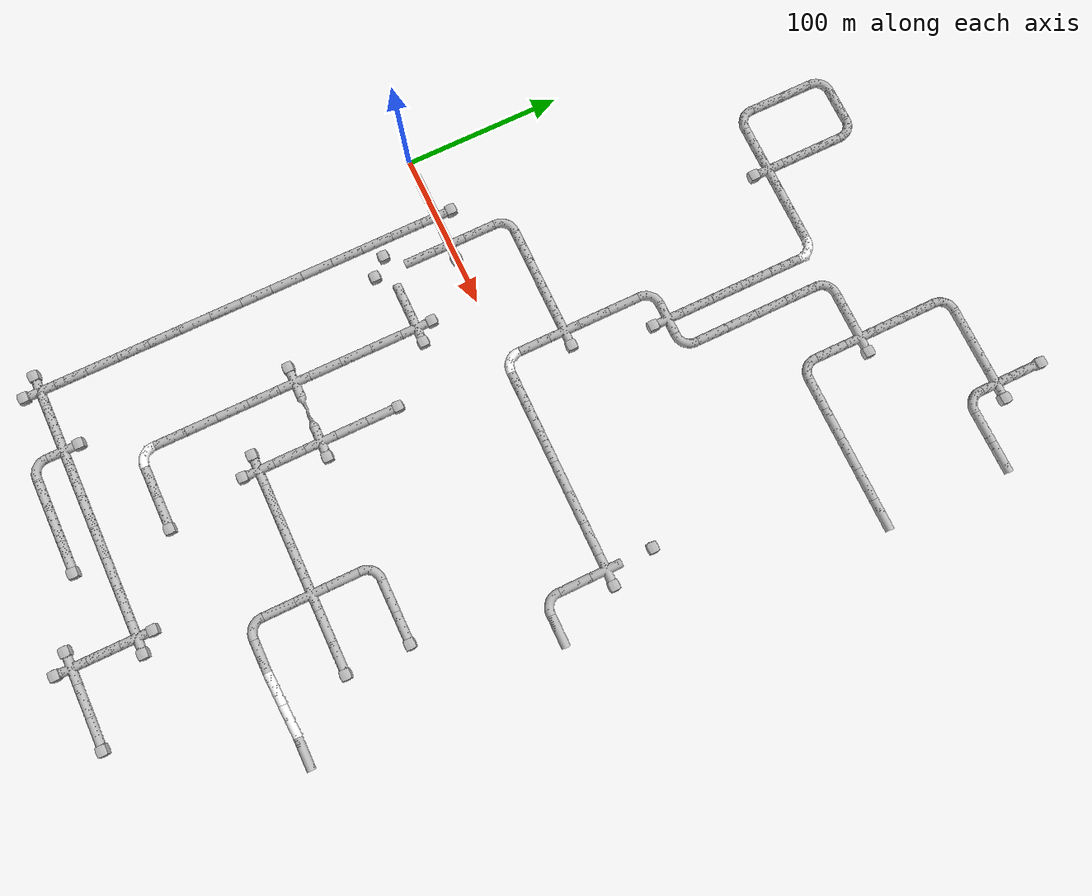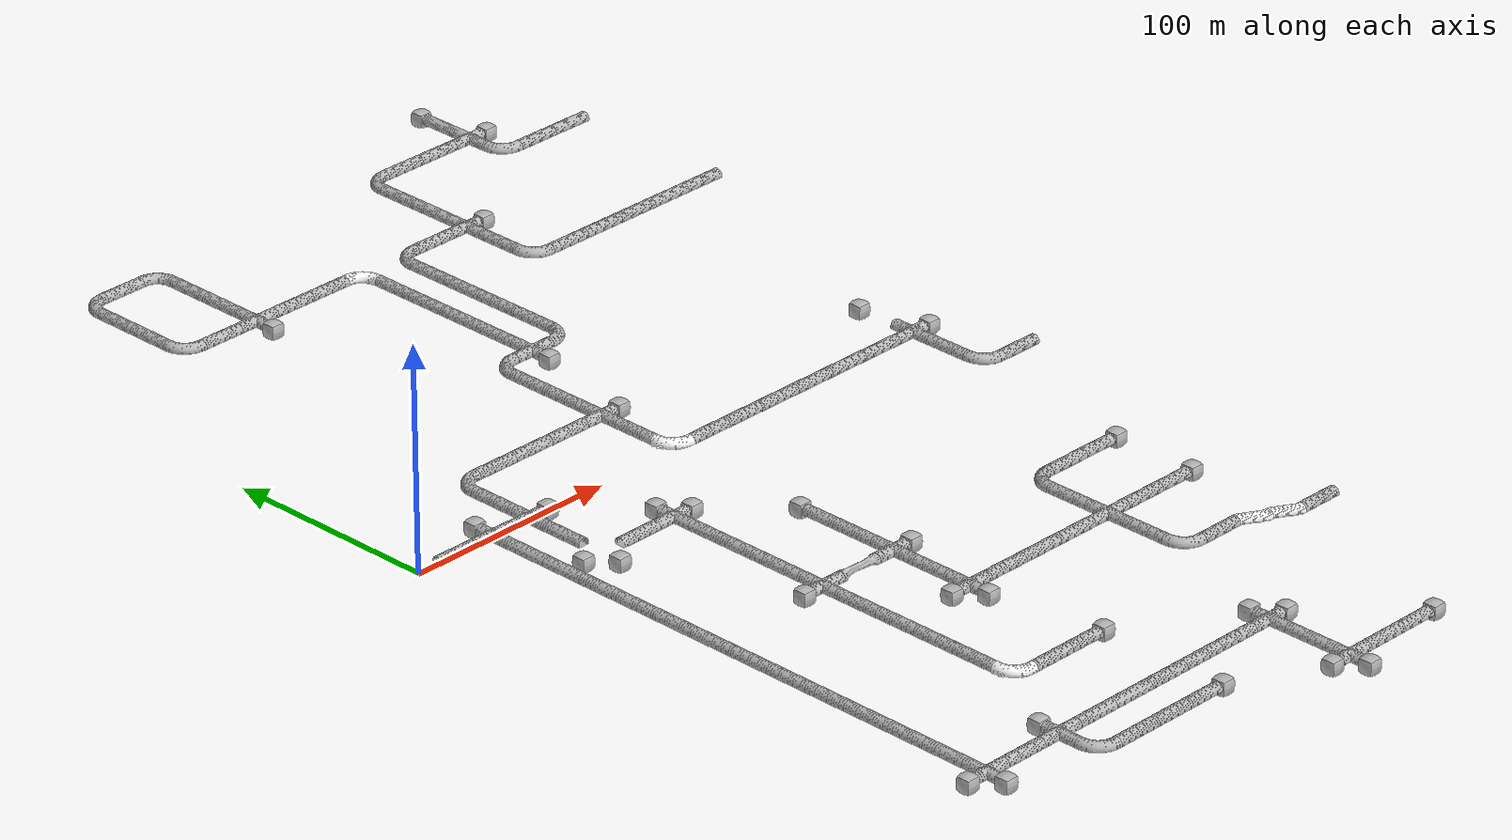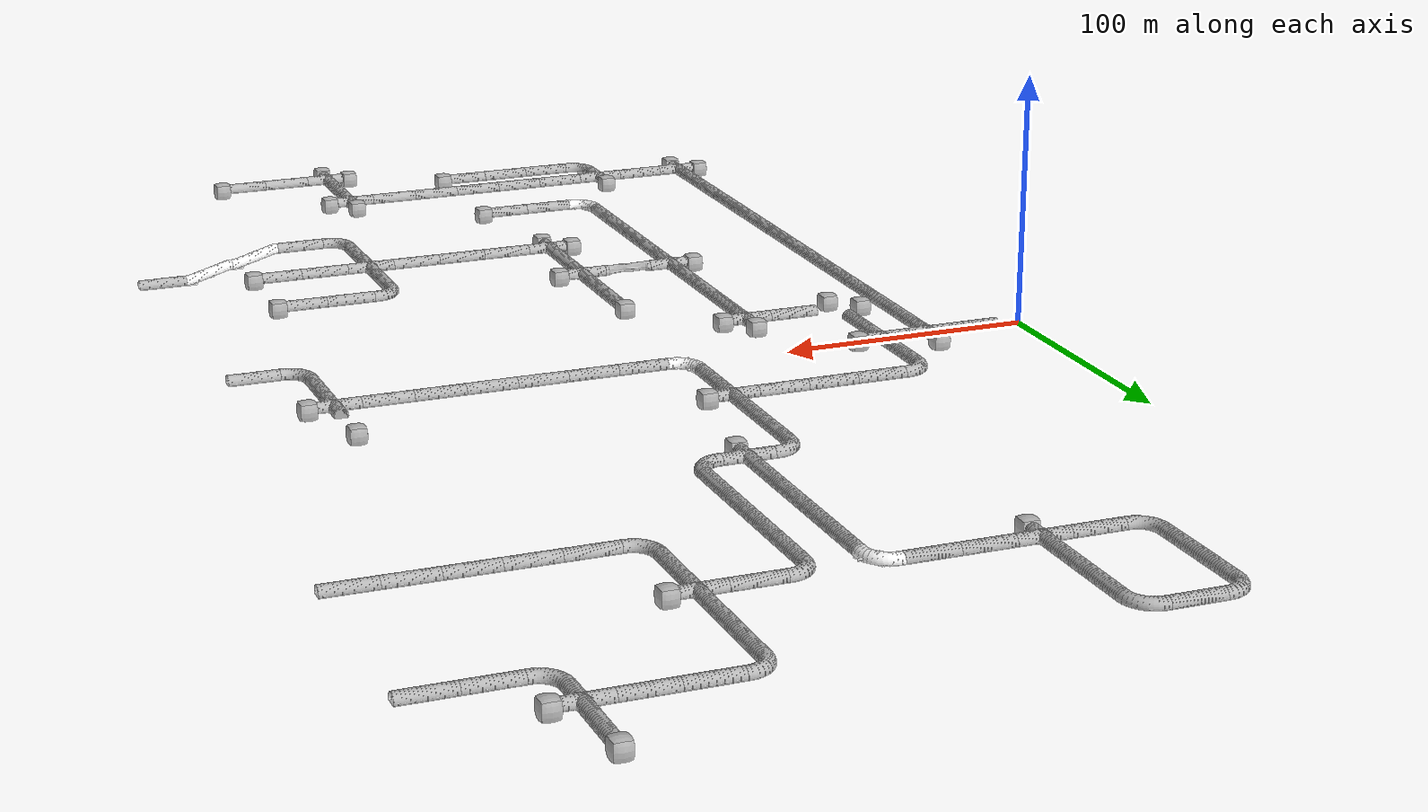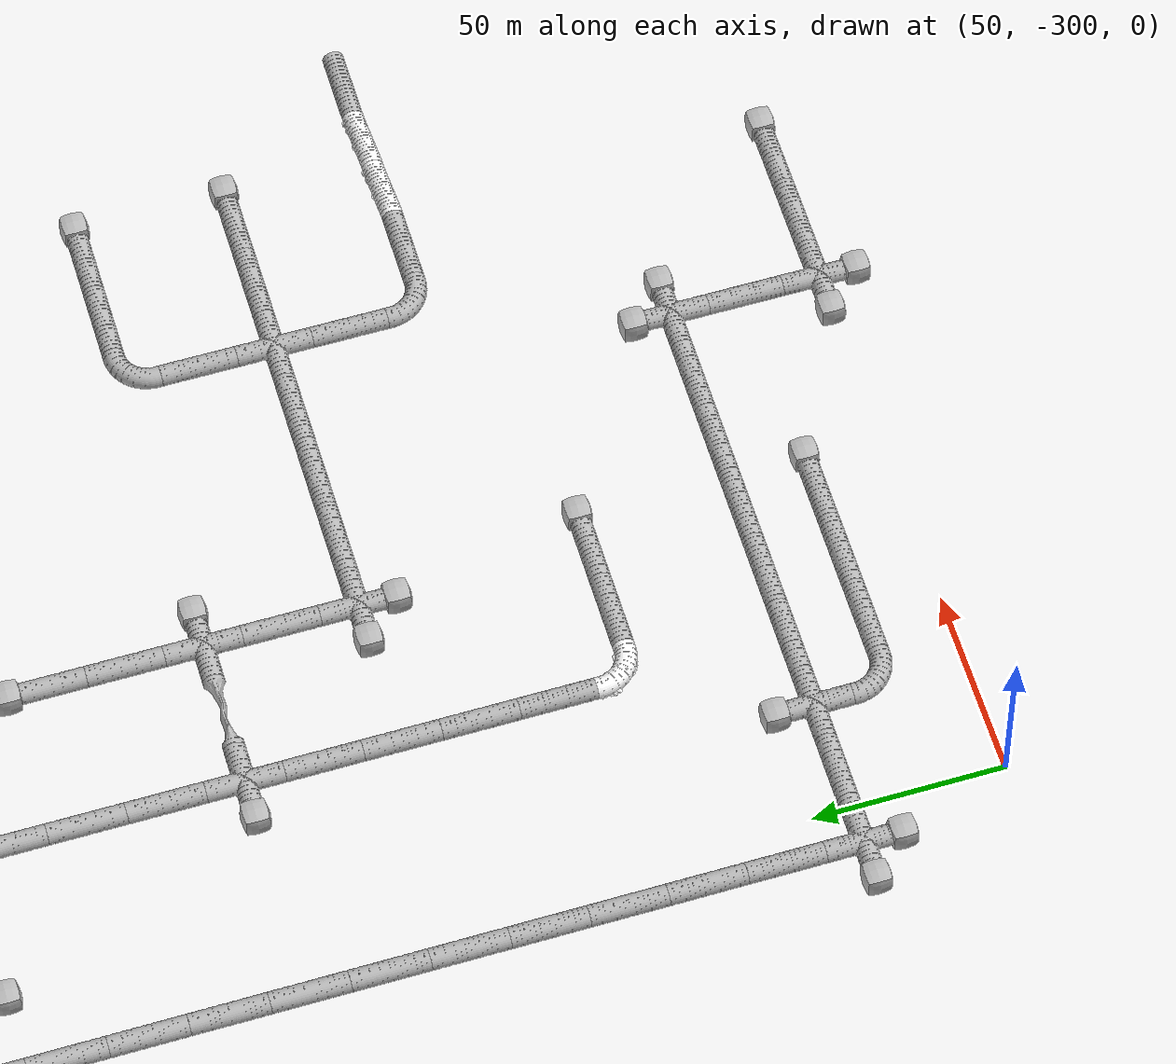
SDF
<sdf version="1.6">
 <world name="tunnel_circuit_02">
  <include><name>artifact_origin</name><pose>2 4 0.5 0 0 0</pose><uri>model://fiducial</uri></include>
  <include>
   <name>tile_3</name>
   <uri>model://tunnel_tile_5</uri>
   <pose>280.000000 280.000000 0.000000 0 0 0.000000</pose>
  </include>
  <include>
   <name>tile_4</name>
   <uri>model://tunnel_tile_blocker</uri>
   <pose>280.000000 290.000000 0.000000 0 0 0.000000</pose>
  </include>
  <include>
   <name>tile_6</name>
   <uri>model://tunnel_tile_2</uri>
   <pose>60.000000 260.000000 0.000000 0 0 0.000000</pose>
  </include>
  <include>
   <name>tile_7</name>
   <uri>model://tunnel_tile_5</uri>
   <pose>80.000000 260.000000 0.000000 0 0 1.570796</pose>
  </include>
  <include>
   <name>tile_8</name>
   <uri>model://tunnel_tile_2</uri>
   <pose>100.000000 260.000000 0.000000 0 0 -1.570796</pose>
  </include>
  <include>
   <name>tile_9</name>
   <uri>model://tunnel_tile_2</uri>
   <pose>220.000000 260.000000 0.000000 0 0 0.000000</pose>
  </include>
  <include>
   <name>tile_10</name>
   <uri>model://tunnel_tile_5</uri>
   <pose>240.000000 260.000000 0.000000 0 0 1.570796</pose>
  </include>
  <include>
   <name>tile_11</name>
   <uri>model://tunnel_tile_5</uri>
   <pose>260.000000 260.000000 0.000000 0 0 1.570796</pose>
  </include>
  <include>
   <name>tile_12</name>
   <uri>model://tunnel_tile_1</uri>
   <pose>280.000000 260.000000 0.000000 0 0 1.570796</pose>
  </include>
  <include>
   <name>tile_13</name>
   <uri>model://tunnel_tile_blocker</uri>
   <pose>290.000000 260.000000 0.000000 0 0 0.000000</pose>
  </include>
  <include>
   <name>tile_21</name>
   <uri>model://tunnel_tile_5</uri>
   <pose>60.000000 240.000000 0.000000 0 0 0.000000</pose>
  </include>
  <include>
   <name>tile_22</name>
   <uri>model://tunnel_tile_5</uri>
   <pose>100.000000 240.000000 0.000000 0 0 -3.141593</pose>
  </include>
  <include>
   <name>tile_23</name>
   <uri>model://tunnel_tile_5</uri>
   <pose>220.000000 240.000000 0.000000 0 0 0.000000</pose>
  </include>
  <include>
   <name>tile_24</name>
   <uri>model://tunnel_tile_2</uri>
   <pose>280.000000 240.000000 0.000000 0 0 1.570796</pose>
  </include>
  <include>
   <name>tile_25</name>
   <uri>model://tunnel_tile_5</uri>
   <pose>300.000000 240.000000 0.000000 0 0 1.570796</pose>
  </include>
  <include>
   <name>tile_26</name>
   <uri>model://tunnel_tile_5</uri>
   <pose>320.000000 240.000000 0.000000 0 0 1.570796</pose>
  </include>
  <include>
   <name>tile_38</name>
   <uri>model://tunnel_tile_5</uri>
   <pose>60.000000 220.000000 0.000000 0 0 0.000000</pose>
  </include>
  <include>
   <name>tile_39</name>
   <uri>model://tunnel_tile_5</uri>
   <pose>100.000000 220.000000 0.000000 0 0 -3.141593</pose>
  </include>
  <include>
   <name>tile_40</name>
   <uri>model://tunnel_tile_5</uri>
   <pose>220.000000 220.000000 0.000000 0 0 0.000000</pose>
  </include>
  <include>
   <name>tile_44</name>
   <uri>model://tunnel_tile_2</uri>
   <pose>60.000000 200.000000 0.000000 0 0 1.570796</pose>
  </include>
  <include>
   <name>extinguisher_1</name>
   <uri>model://Extinguisher</uri>
   <pose>58.500000 212.848007 0.050000 -1.570796 0 1.570796</pose>
  </include>
  <include>
   <name>tile_45</name>
   <uri>model://tunnel_tile_5</uri>
   <pose>80.000000 200.000000 0.000000 0 0 -1.570796</pose>
  </include>
  <include>
   <name>tile_46</name>
   <uri>model://tunnel_tile_1</uri>
   <pose>100.000000 200.000000 0.000000 0 0 1.570796</pose>
  </include>
  <include>
   <name>tile_47</name>
   <uri>model://tunnel_tile_blocker</uri>
   <pose>100.000000 190.000000 0.000000 0 0 0.000000</pose>
  </include>
  <include>
   <name>tile_48</name>
   <uri>model://tunnel_tile_5</uri>
   <pose>120.000000 200.000000 0.000000 0 0 -1.570796</pose>
  </include>
  <include>
   <name>tile_49</name>
   <uri>model://tunnel_tile_5</uri>
   <pose>140.000000 200.000000 0.000000 0 0 -1.570796</pose>
  </include>
  <include>
   <name>tile_50</name>
   <uri>model://Rough Tunnel Tile 90-degree Turn</uri>
   <pose>160.000000 200.000000 0.000000 0 0 -1.570796</pose>
  </include>
  <include>
   <name>tile_51</name>
   <uri>model://tunnel_tile_2</uri>
   <pose>180.000000 200.000000 0.000000 0 0 0.000000</pose>
  </include>
  <include>
   <name>tile_52</name>
   <uri>model://tunnel_tile_5</uri>
   <pose>200.000000 200.000000 0.000000 0 0 -1.570796</pose>
  </include>
  <include>
   <name>tile_53</name>
   <uri>model://tunnel_tile_1</uri>
   <pose>220.000000 200.000000 0.000000 0 0 0.000000</pose>
  </include>
  <include>
   <name>tile_54</name>
   <uri>model://tunnel_tile_blocker</uri>
   <pose>230.000000 200.000000 0.000000 0 0 0.000000</pose>
  </include>
  <include>
   <name>tile_62</name>
   <uri>model://tunnel_tile_5</uri>
   <pose>160.000000 180.000000 0.000000 0 0 0.000000</pose>
  </include>
  <include>
   <name>tile_63</name>
   <uri>model://tunnel_tile_5</uri>
   <pose>180.000000 180.000000 0.000000 0 0 0.000000</pose>
  </include>
  <include>
   <name>tile_64</name>
   <uri>model://tunnel_tile_5</uri>
   <pose>220.000000 180.000000 0.000000 0 0 0.000000</pose>
  </include>
  <include>
   <name>tile_68</name>
   <uri>model://tunnel_tile_5</uri>
   <pose>160.000000 160.000000 0.000000 0 0 0.000000</pose>
  </include>
  <include>
   <name>tile_69</name>
   <uri>model://tunnel_tile_5</uri>
   <pose>180.000000 160.000000 0.000000 0 0 0.000000</pose>
  </include>
  <include>
   <name>tile_70</name>
   <uri>model://tunnel_tile_2</uri>
   <pose>220.000000 160.000000 0.000000 0 0 1.570796</pose>
  </include>
  <include>
   <name>tile_71</name>
   <uri>model://tunnel_tile_5</uri>
   <pose>240.000000 160.000000 0.000000 0 0 1.570796</pose>
  </include>
  <include>
   <name>backpack_1</name>
   <uri>model://Backpack</uri>
   <pose>254.593994 157.921005 0.000000 0 0 1.570796</pose>
  </include>
  <include>
   <name>tile_72</name>
   <uri>model://tunnel_tile_5</uri>
   <pose>260.000000 160.000000 0.000000 0 0 1.570796</pose>
  </include>
  <include>
   <name>tile_73</name>
   <uri>model://tunnel_tile_5</uri>
   <pose>280.000000 160.000000 0.000000 0 0 1.570796</pose>
  </include>
  <include>
   <name>tile_74</name>
   <uri>model://tunnel_tile_5</uri>
   <pose>300.000000 160.000000 0.000000 0 0 1.570796</pose>
  </include>
  <include>
   <name>tile_75</name>
   <uri>model://tunnel_tile_5</uri>
   <pose>320.000000 160.000000 0.000000 0 0 1.570796</pose>
  </include>
  <include>
   <name>tile_87</name>
   <uri>model://tunnel_tile_5</uri>
   <pose>160.000000 140.000000 0.000000 0 0 0.000000</pose>
  </include>
  <include>
   <name>tile_88</name>
   <uri>model://tunnel_tile_5</uri>
   <pose>180.000000 140.000000 0.000000 0 0 0.000000</pose>
  </include>
  <include>
   <name>tile_90</name>
   <uri>model://tunnel_tile_5</uri>
   <pose>160.000000 120.000000 0.000000 0 0 0.000000</pose>
  </include>
  <include>
   <name>tile_91</name>
   <uri>model://tunnel_tile_5</uri>
   <pose>180.000000 120.000000 0.000000 0 0 0.000000</pose>
  </include>
  <include>
   <name>tile_93</name>
   <uri>model://tunnel_tile_2</uri>
   <pose>140.000000 100.000000 0.000000 0 0 0.000000</pose>
  </include>
  <include>
   <name>tile_94</name>
   <uri>model://tunnel_tile_1</uri>
   <pose>160.000000 100.000000 0.000000 0 0 0.000000</pose>
  </include>
  <include>
   <name>tile_95</name>
   <uri>model://tunnel_tile_2</uri>
   <pose>180.000000 100.000000 0.000000 0 0 -3.141593</pose>
  </include>
  <include>
   <name>tile_97</name>
   <uri>model://tunnel_tile_5</uri>
   <pose>140.000000 80.000000 0.000000 0 0 -3.141593</pose>
  </include>
  <include>
   <name>tile_98</name>
   <uri>model://tunnel_tile_blocker</uri>
   <pose>160.000000 90.000000 0.000000 0 0 0.000000</pose>
  </include>
  <include>
   <name>tile_100</name>
   <uri>model://tunnel_tile_5</uri>
   <pose>140.000000 60.000000 0.000000 0 0 -3.141593</pose>
  </include>
  <include>
   <name>tile_102</name>
   <uri>model://tunnel_tile_2</uri>
   <pose>60.000000 40.000000 0.000000 0 0 0.000000</pose>
  </include>
  <include>
   <name>tile_103</name>
   <uri>model://tunnel_tile_5</uri>
   <pose>80.000000 40.000000 0.000000 0 0 -1.570796</pose>
  </include>
  <include>
   <name>tile_104</name>
   <uri>model://tunnel_tile_5</uri>
   <pose>100.000000 40.000000 0.000000 0 0 1.570796</pose>
  </include>
  <include>
   <name>backpack_2</name>
   <uri>model://Backpack</uri>
   <pose>114.403297 41.899601 0.000000 0 0 -0.000000</pose>
  </include>
  <include>
   <name>tile_105</name>
   <uri>model://tunnel_tile_5</uri>
   <pose>120.000000 40.000000 0.000000 0 0 -1.570796</pose>
  </include>
  <include>
   <name>tile_106</name>
   <uri>model://tunnel_tile_1</uri>
   <pose>140.000000 40.000000 0.000000 0 0 -1.570796</pose>
  </include>
  <include>
   <name>tile_107</name>
   <uri>model://tunnel_tile_blocker</uri>
   <pose>150.000000 40.000000 0.000000 0 0 0.000000</pose>
  </include>
  <include>
   <name>tile_119</name>
   <uri>model://tunnel_tile_5</uri>
   <pose>60.000000 20.000000 0.000000 0 0 0.000000</pose>
  </include>
  <include>
   <name>tile_120</name>
   <uri>model://tunnel_tile_5</uri>
   <pose>140.000000 20.000000 0.000000 0 0 -3.141593</pose>
  </include>
  <include>
   <name>tile_122</name>
   <uri>model://tunnel_tile_blocker</uri>
   <pose>280.000000 30.000000 0.000000 0 0 0.000000</pose>
  </include>
  <include>
   <name>tile_125</name>
   <uri>model://tunnel_tile_5</uri>
   <pose>20.000000 0.000000 0.000000 0 0 1.570796</pose>
  </include>
  <include>
   <name>tile_126</name>
   <uri>model://tunnel_tile_1</uri>
   <pose>40.000000 0.000000 0.000000 0 0 1.570796</pose>
  </include>
  <include>
   <name>tile_127</name>
   <uri>model://tunnel_tile_blocker</uri>
   <pose>40.000000 10.000000 0.000000 0 0 0.000000</pose>
  </include>
  <include>
   <name>tile_128</name>
   <uri>model://tunnel_tile_1</uri>
   <pose>60.000000 0.000000 0.000000 0 0 1.570796</pose>
  </include>
  <include>
   <name>tile_129</name>
   <uri>model://tunnel_tile_blocker</uri>
   <pose>70.000000 0.000000 0.000000 0 0 0.000000</pose>
  </include>
  <include>
   <name>phone_2</name>
   <uri>model://Phone</uri>
   <pose>65.633999 0.142002 0.006000 -1.570796 0 2.356194</pose>
  </include>
  <include>
   <name>tile_130</name>
   <uri>model://Rough Tunnel Tile 90-degree Turn</uri>
   <pose>140.000000 0.000000 0.000000 0 0 1.570796</pose>
  </include>
  <include>
   <name>tile_131</name>
   <uri>model://tunnel_tile_5</uri>
   <pose>160.000000 0.000000 0.000000 0 0 1.570796</pose>
  </include>
  <include>
   <name>tile_132</name>
   <uri>model://tunnel_tile_5</uri>
   <pose>180.000000 0.000000 0.000000 0 0 1.570796</pose>
  </include>
  <include>
   <name>tile_133</name>
   <uri>model://tunnel_tile_5</uri>
   <pose>200.000000 0.000000 0.000000 0 0 1.570796</pose>
  </include>
  <include>
   <name>tile_134</name>
   <uri>model://tunnel_tile_5</uri>
   <pose>220.000000 0.000000 0.000000 0 0 1.570796</pose>
  </include>
  <include>
   <name>tile_135</name>
   <uri>model://tunnel_tile_5</uri>
   <pose>240.000000 0.000000 0.000000 0 0 1.570796</pose>
  </include>
  <include>
   <name>extinguisher_2</name>
   <uri>model://Extinguisher</uri>
   <pose>248.699997 0.848270 0.050000 -1.570796 0 -3.141593</pose>
  </include>
  <include>
   <name>tile_136</name>
   <uri>model://tunnel_tile_5</uri>
   <pose>260.000000 0.000000 0.000000 0 0 1.570796</pose>
  </include>
  <include>
   <name>tile_137</name>
   <uri>model://tunnel_tile_1</uri>
   <pose>280.000000 0.000000 0.000000 0 0 1.570796</pose>
  </include>
  <include>
   <name>tile_138</name>
   <uri>model://tunnel_tile_blocker</uri>
   <pose>290.000000 0.000000 0.000000 0 0 0.000000</pose>
  </include>
  <include>
   <name>tile_159</name>
   <uri>model://tunnel_tile_5</uri>
   <pose>40.000000 -20.000000 0.000000 0 0 -3.141593</pose>
  </include>
  <include>
   <name>tile_160</name>
   <uri>model://tunnel_tile_5</uri>
   <pose>60.000000 -20.000000 0.000000 0 0 -3.141593</pose>
  </include>
  <include>
   <name>tile_161</name>
   <uri>model://tunnel_tile_5</uri>
   <pose>280.000000 -20.000000 0.000000 0 0 0.000000</pose>
  </include>
  <include>
   <name>tile_166</name>
   <uri>model://tunnel_tile_5</uri>
   <pose>40.000000 -40.000000 0.000000 0 0 -3.141593</pose>
  </include>
  <include>
   <name>tile_167</name>
   <uri>model://tunnel_tile_blocker</uri>
   <pose>50.000000 -40.000000 0.000000 0 0 0.000000</pose>
  </include>
  <include>
   <name>tile_169</name>
   <uri>model://tunnel_tile_5</uri>
   <pose>80.000000 -40.000000 0.000000 0 0 1.570796</pose>
  </include>
  <include>
   <name>tile_170</name>
   <uri>model://tunnel_tile_1</uri>
   <pose>100.000000 -40.000000 0.000000 0 0 1.570796</pose>
  </include>
  <include>
   <name>tile_171</name>
   <uri>model://tunnel_tile_blocker</uri>
   <pose>100.000000 -30.000000 0.000000 0 0 0.000000</pose>
  </include>
  <include>
   <name>tile_172</name>
   <uri>model://tunnel_tile_blocker</uri>
   <pose>110.000000 -40.000000 0.000000 0 0 0.000000</pose>
  </include>
  <include>
   <name>extinguisher_3</name>
   <uri>model://Extinguisher</uri>
   <pose>105.050003 -39.751999 0.050000 -1.570796 0 1.570796</pose>
  </include>
  <include>
   <name>tile_173</name>
   <uri>model://tunnel_tile_2</uri>
   <pose>280.000000 -40.000000 0.000000 0 0 1.570796</pose>
  </include>
  <include>
   <name>tile_174</name>
   <uri>model://tunnel_tile_5</uri>
   <pose>300.000000 -40.000000 0.000000 0 0 1.570796</pose>
  </include>
  <include>
   <name>tile_181</name>
   <uri>model://tunnel_tile_5</uri>
   <pose>40.000000 -60.000000 0.000000 0 0 -3.141593</pose>
  </include>
  <include>
   <name>tile_182</name>
   <uri>model://tunnel_tile_blocker</uri>
   <pose>60.000000 -50.000000 0.000000 0 0 0.000000</pose>
  </include>
  <include>
   <name>tile_183</name>
   <uri>model://tunnel_tile_5</uri>
   <pose>100.000000 -60.000000 0.000000 0 0 0.000000</pose>
  </include>
  <include>
   <name>tile_189</name>
   <uri>model://tunnel_tile_5</uri>
   <pose>40.000000 -80.000000 0.000000 0 0 -3.141593</pose>
  </include>
  <include>
   <name>tile_190</name>
   <uri>model://tunnel_tile_5</uri>
   <pose>100.000000 -80.000000 0.000000 0 0 0.000000</pose>
  </include>
  <include>
   <name>tile_191</name>
   <uri>model://tunnel_tile_5</uri>
   <pose>140.000000 -80.000000 0.000000 0 0 -3.141593</pose>
  </include>
  <include>
   <name>tile_192</name>
   <uri>model://tunnel_tile_blocker</uri>
   <pose>140.000000 -70.000000 0.000000 0 0 0.000000</pose>
  </include>
  <include>
   <name>tile_194</name>
   <uri>model://tunnel_tile_5</uri>
   <pose>40.000000 -100.000000 0.000000 0 0 -3.141593</pose>
  </include>
  <include>
   <name>tile_195</name>
   <uri>model://tunnel_tile_5</uri>
   <pose>100.000000 -100.000000 0.000000 0 0 0.000000</pose>
  </include>
  <include>
   <name>tile_196</name>
   <uri>model://tunnel_tile_5</uri>
   <pose>140.000000 -100.000000 0.000000 0 0 -3.141593</pose>
  </include>
  <include>
   <name>tile_198</name>
   <uri>model://tunnel_tile_5</uri>
   <pose>40.000000 -120.000000 0.000000 0 0 -3.141593</pose>
  </include>
  <include>
   <name>tile_199</name>
   <uri>model://tunnel_tile_1</uri>
   <pose>100.000000 -120.000000 0.000000 0 0 1.570796</pose>
  </include>
  <include>
   <name>tile_200</name>
   <uri>model://tunnel_tile_blocker</uri>
   <pose>90.000000 -120.000000 0.000000 0 0 0.000000</pose>
  </include>
  <include>
   <name>tile_201</name>
   <uri>model://constrained_tunnel_tile_tall</uri>
   <pose>120.000000 -120.000000 0.000000 0 0 1.570796</pose>
  </include>
  <include>
   <name>tile_202</name>
   <uri>model://tunnel_tile_1</uri>
   <pose>140.000000 -120.000000 0.000000 0 0 1.570796</pose>
  </include>
  <include>
   <name>tile_203</name>
   <uri>model://tunnel_tile_blocker</uri>
   <pose>150.000000 -120.000000 0.000000 0 0 0.000000</pose>
  </include>
  <include>
   <name>tile_204</name>
   <uri>model://tunnel_tile_2</uri>
   <pose>220.000000 -120.000000 0.000000 0 0 0.000000</pose>
  </include>
  <include>
   <name>tile_205</name>
   <uri>model://tunnel_tile_5</uri>
   <pose>240.000000 -120.000000 0.000000 0 0 -1.570796</pose>
  </include>
  <include>
   <name>tile_206</name>
   <uri>model://tunnel_tile_5</uri>
   <pose>260.000000 -120.000000 0.000000 0 0 -1.570796</pose>
  </include>
  <include>
   <name>tile_207</name>
   <uri>model://tunnel_tile_blocker</uri>
   <pose>270.000000 -120.000000 0.000000 0 0 0.000000</pose>
  </include>
  <include>
   <name>tile_209</name>
   <uri>model://tunnel_tile_5</uri>
   <pose>40.000000 -140.000000 0.000000 0 0 -3.141593</pose>
  </include>
  <include>
   <name>tile_210</name>
   <uri>model://tunnel_tile_5</uri>
   <pose>100.000000 -140.000000 0.000000 0 0 0.000000</pose>
  </include>
  <include>
   <name>tile_211</name>
   <uri>model://tunnel_tile_5</uri>
   <pose>140.000000 -140.000000 0.000000 0 0 0.000000</pose>
  </include>
  <include>
   <name>tile_212</name>
   <uri>model://tunnel_tile_5</uri>
   <pose>220.000000 -140.000000 0.000000 0 0 -3.141593</pose>
  </include>
  <include>
   <name>tile_232</name>
   <uri>model://tunnel_tile_5</uri>
   <pose>40.000000 -160.000000 0.000000 0 0 -3.141593</pose>
  </include>
  <include>
   <name>tile_233</name>
   <uri>model://tunnel_tile_5</uri>
   <pose>100.000000 -160.000000 0.000000 0 0 0.000000</pose>
  </include>
  <include>
   <name>tile_234</name>
   <uri>model://tunnel_tile_blocker</uri>
   <pose>130.000000 -160.000000 0.000000 0 0 0.000000</pose>
  </include>
  <include>
   <name>tile_235</name>
   <uri>model://tunnel_tile_1</uri>
   <pose>140.000000 -160.000000 0.000000 0 0 0.000000</pose>
  </include>
  <include>
   <name>tile_236</name>
   <uri>model://tunnel_tile_blocker</uri>
   <pose>140.000000 -170.000000 0.000000 0 0 0.000000</pose>
  </include>
  <include>
   <name>tile_237</name>
   <uri>model://tunnel_tile_5</uri>
   <pose>160.000000 -160.000000 0.000000 0 0 -1.570796</pose>
  </include>
  <include>
   <name>tile_238</name>
   <uri>model://tunnel_tile_5</uri>
   <pose>180.000000 -160.000000 0.000000 0 0 -1.570796</pose>
  </include>
  <include>
   <name>tile_239</name>
   <uri>model://tunnel_tile_5</uri>
   <pose>200.000000 -160.000000 0.000000 0 0 -1.570796</pose>
  </include>
  <include>
   <name>tile_240</name>
   <uri>model://tunnel_tile_1</uri>
   <pose>220.000000 -160.000000 0.000000 0 0 -3.141593</pose>
  </include>
  <include>
   <name>tile_241</name>
   <uri>model://tunnel_tile_5</uri>
   <pose>240.000000 -160.000000 0.000000 0 0 -1.570796</pose>
  </include>
  <include>
   <name>tile_242</name>
   <uri>model://tunnel_tile_5</uri>
   <pose>260.000000 -160.000000 0.000000 0 0 -1.570796</pose>
  </include>
  <include>
   <name>tile_243</name>
   <uri>model://tunnel_tile_blocker</uri>
   <pose>270.000000 -160.000000 0.000000 0 0 0.000000</pose>
  </include>
  <include>
   <name>tile_250</name>
   <uri>model://tunnel_tile_5</uri>
   <pose>40.000000 -180.000000 0.000000 0 0 -3.141593</pose>
  </include>
  <include>
   <name>tile_251</name>
   <uri>model://tunnel_tile_5</uri>
   <pose>100.000000 -180.000000 0.000000 0 0 0.000000</pose>
  </include>
  <include>
   <name>tile_252</name>
   <uri>model://tunnel_tile_5</uri>
   <pose>220.000000 -180.000000 0.000000 0 0 -3.141593</pose>
  </include>
  <include>
   <name>tile_256</name>
   <uri>model://tunnel_tile_5</uri>
   <pose>40.000000 -200.000000 0.000000 0 0 -3.141593</pose>
  </include>
  <include>
   <name>tile_257</name>
   <uri>model://tunnel_tile_5</uri>
   <pose>100.000000 -200.000000 0.000000 0 0 0.000000</pose>
  </include>
  <include>
   <name>tile_258</name>
   <uri>model://tunnel_tile_2</uri>
   <pose>220.000000 -200.000000 0.000000 0 0 1.570796</pose>
  </include>
  <include>
   <name>tile_259</name>
   <uri>model://tunnel_tile_5</uri>
   <pose>240.000000 -200.000000 0.000000 0 0 -1.570796</pose>
  </include>
  <include>
   <name>tile_260</name>
   <uri>model://Rough Tunnel Tile Ramp</uri>
   <pose>260.000000 -200.000000 -5.000000 0 0 1.570796</pose>
  </include>
  <include>
   <name>tile_261</name>
   <uri>model://Rough Tunnel Tile Ramp</uri>
   <pose>280.000000 -200.000000 -10.000000 0 0 1.570796</pose>
  </include>
  <include>
   <name>tile_262</name>
   <uri>model://tunnel_tile_5</uri>
   <pose>300.000000 -200.000000 -10.000000 0 0 1.570796</pose>
  </include>
  <include>
   <name>tile_272</name>
   <uri>model://tunnel_tile_5</uri>
   <pose>40.000000 -220.000000 0.000000 0 0 -3.141593</pose>
  </include>
  <include>
   <name>tile_273</name>
   <uri>model://Rough Tunnel Tile 90-degree Turn</uri>
   <pose>100.000000 -220.000000 0.000000 0 0 1.570796</pose>
  </include>
  <include>
   <name>tile_274</name>
   <uri>model://tunnel_tile_5</uri>
   <pose>120.000000 -220.000000 0.000000 0 0 1.570796</pose>
  </include>
  <include>
   <name>tile_275</name>
   <uri>model://tunnel_tile_5</uri>
   <pose>140.000000 -220.000000 0.000000 0 0 1.570796</pose>
  </include>
  <include>
   <name>tile_276</name>
   <uri>model://tunnel_tile_blocker</uri>
   <pose>150.000000 -220.000000 0.000000 0 0 0.000000</pose>
  </include>
  <include>
   <name>tile_288</name>
   <uri>model://tunnel_tile_5</uri>
   <pose>40.000000 -240.000000 0.000000 0 0 -3.141593</pose>
  </include>
  <include>
   <name>tile_299</name>
   <uri>model://tunnel_tile_1</uri>
   <pose>40.000000 -260.000000 0.000000 0 0 -3.141593</pose>
  </include>
  <include>
   <name>tile_300</name>
   <uri>model://tunnel_tile_blocker</uri>
   <pose>30.000000 -260.000000 0.000000 0 0 0.000000</pose>
  </include>
  <include>
   <name>tile_301</name>
   <uri>model://tunnel_tile_blocker</uri>
   <pose>40.000000 -270.000000 0.000000 0 0 0.000000</pose>
  </include>
  <include>
   <name>tile_302</name>
   <uri>model://tunnel_tile_5</uri>
   <pose>60.000000 -260.000000 0.000000 0 0 1.570796</pose>
  </include>
  <include>
   <name>tile_303</name>
   <uri>model://tunnel_tile_1</uri>
   <pose>80.000000 -260.000000 0.000000 0 0 1.570796</pose>
  </include>
  <include>
   <name>tile_304</name>
   <uri>model://tunnel_tile_blocker</uri>
   <pose>80.000000 -250.000000 0.000000 0 0 0.000000</pose>
  </include>
  <include>
   <name>tile_305</name>
   <uri>model://tunnel_tile_5</uri>
   <pose>100.000000 -260.000000 0.000000 0 0 1.570796</pose>
  </include>
  <include>
   <name>tile_306</name>
   <uri>model://tunnel_tile_5</uri>
   <pose>120.000000 -260.000000 0.000000 0 0 1.570796</pose>
  </include>
  <include>
   <name>tile_307</name>
   <uri>model://tunnel_tile_5</uri>
   <pose>140.000000 -260.000000 0.000000 0 0 1.570796</pose>
  </include>
  <include>
   <name>tile_308</name>
   <uri>model://tunnel_tile_5</uri>
   <pose>160.000000 -260.000000 0.000000 0 0 1.570796</pose>
  </include>
  <include>
   <name>tile_309</name>
   <uri>model://tunnel_tile_5</uri>
   <pose>180.000000 -260.000000 0.000000 0 0 1.570796</pose>
  </include>
  <include>
   <name>tile_310</name>
   <uri>model://tunnel_tile_1</uri>
   <pose>200.000000 -260.000000 0.000000 0 0 1.570796</pose>
  </include>
  <include>
   <name>tile_311</name>
   <uri>model://tunnel_tile_blocker</uri>
   <pose>200.000000 -250.000000 0.000000 0 0 0.000000</pose>
  </include>
  <include>
   <name>tile_312</name>
   <uri>model://tunnel_tile_blocker</uri>
   <pose>210.000000 -260.000000 0.000000 0 0 0.000000</pose>
  </include>
  <include>
   <name>tile_320</name>
   <uri>model://tunnel_tile_2</uri>
   <pose>80.000000 -280.000000 0.000000 0 0 1.570796</pose>
  </include>
  <include>
   <name>tile_321</name>
   <uri>model://tunnel_tile_5</uri>
   <pose>100.000000 -280.000000 0.000000 0 0 1.570796</pose>
  </include>
  <include>
   <name>tile_322</name>
   <uri>model://tunnel_tile_5</uri>
   <pose>120.000000 -280.000000 0.000000 0 0 1.570796</pose>
  </include>
  <include>
   <name>tile_323</name>
   <uri>model://tunnel_tile_5</uri>
   <pose>140.000000 -280.000000 0.000000 0 0 1.570796</pose>
  </include>
  <include>
   <name>tile_324</name>
   <uri>model://tunnel_tile_blocker</uri>
   <pose>150.000000 -280.000000 0.000000 0 0 0.000000</pose>
  </include>
  <include>
   <name>extinguisher_4</name>
   <uri>model://Extinguisher</uri>
   <pose>173.000000 -260.851990 0.000000 0 0 1.570796</pose>
  </include>
  <include>
   <name>tile_325</name>
   <uri>model://tunnel_tile_5</uri>
   <pose>200.000000 -280.000000 0.000000 0 0 0.000000</pose>
  </include>
  <include>
   <name>tile_330</name>
   <uri>model://tunnel_tile_1</uri>
   <pose>200.000000 -300.000000 0.000000 0 0 1.570796</pose>
  </include>
  <include>
   <name>tile_331</name>
   <uri>model://tunnel_tile_blocker</uri>
   <pose>190.000000 -300.000000 0.000000 0 0 0.000000</pose>
  </include>
  <include>
   <name>tile_332</name>
   <uri>model://tunnel_tile_blocker</uri>
   <pose>200.000000 -310.000000 0.000000 0 0 0.000000</pose>
  </include>
  <include>
   <name>tile_333</name>
   <uri>model://tunnel_tile_5</uri>
   <pose>220.000000 -300.000000 0.000000 0 0 -1.570796</pose>
  </include>
  <include>
   <name>tile_334</name>
   <uri>model://tunnel_tile_5</uri>
   <pose>240.000000 -300.000000 0.000000 0 0 -1.570796</pose>
  </include>
  <include>
   <name>tile_335</name>
   <uri>model://tunnel_tile_blocker</uri>
   <pose>250.000000 -300.000000 0.000000 0 0 1.570796</pose>
  </include>
 </world>
</sdf>
